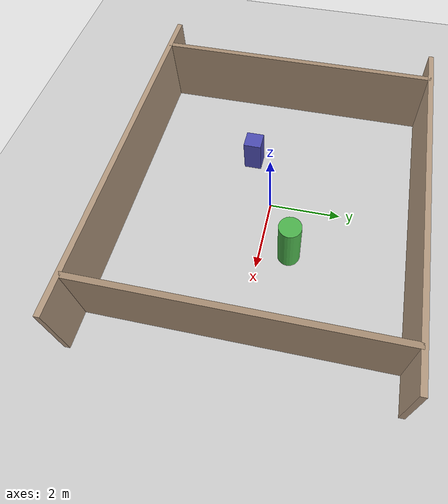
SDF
<?xml version="1.0"?>
<sdf version="1.6">
	<world name="empty">
		<physics type="ode">
			<max_step_size>0.001</max_step_size>
			<real_time_factor>1</real_time_factor>
			<real_time_update_rate>1000</real_time_update_rate>
		</physics>

		<model name="ground_plane">
			<static>true</static>
			<link name="link">
				<collision name="collision">
					<geometry><plane><normal>0 0 1</normal><size>20 20</size></plane></geometry>
				</collision>
				<visual name="visual">
					<geometry><plane><normal>0 0 1</normal><size>20 20</size></plane></geometry>
					<material><ambient>0.8 0.8 0.8 1</ambient></material>
				</visual>
			</link>
		</model>

		<light name="sun" type="directional">
			<pose>0 0 10 0 0 0</pose>
			<diffuse>0.8 0.8 0.8 1</diffuse>
		</light>

		<!-- Simple room walls for LiDAR to see -->
		<model name="wall_north">
			<static>true</static>
			<link name="link">
				<collision name="collision">
					<geometry><box><size>10 0.15 2</size></box></geometry>
				</collision>
				<visual name="visual">
					<geometry><box><size>10 0.15 2</size></box></geometry>
					<material><ambient>0.7 0.6 0.5 1</ambient></material>
				</visual>
			</link>
			<pose>0 4 1 0 0 0</pose>
		</model>

		<model name="wall_south">
			<static>true</static>
			<link name="link">
				<collision name="collision">
					<geometry><box><size>10 0.15 2</size></box></geometry>
				</collision>
				<visual name="visual">
					<geometry><box><size>10 0.15 2</size></box></geometry>
					<material><ambient>0.7 0.6 0.5 1</ambient></material>
				</visual>
			</link>
			<pose>0 -4 1 0 0 0</pose>
		</model>

		<model name="wall_east">
			<static>true</static>
			<link name="link">
				<collision name="collision">
					<geometry><box><size>0.15 8 2</size></box></geometry>
				</collision>
				<visual name="visual">
					<geometry><box><size>0.15 8 2</size></box></geometry>
					<material><ambient>0.65 0.55 0.45 1</ambient></material>
				</visual>
			</link>
			<pose>4 0 1 0 0 0</pose>
		</model>

		<model name="wall_west">
			<static>true</static>
			<link name="link">
				<collision name="collision">
					<geometry><box><size>0.15 8 2</size></box></geometry>
				</collision>
				<visual name="visual">
					<geometry><box><size>0.15 8 2</size></box></geometry>
					<material><ambient>0.65 0.55 0.45 1</ambient></material>
				</visual>
			</link>
			<pose>-4 0 1 0 0 0</pose>
		</model>

		<model name="cylinder_obs">
			<static>true</static>
			<link name="link">
				<collision name="collision">
					<geometry><cylinder><radius>0.3</radius><length>1.5</length></cylinder></geometry>
				</collision>
				<visual name="visual">
					<geometry><cylinder><radius>0.3</radius><length>1.5</length></cylinder></geometry>
					<material><ambient>0.3 0.7 0.3 1</ambient></material>
				</visual>
			</link>
			<pose>1.5 0.8 0.75 0 0 0</pose>
		</model>

		<model name="box_obs">
			<static>true</static>
			<link name="link">
				<collision name="collision">
					<geometry><box><size>0.5 0.5 1.0</size></box></geometry>
				</collision>
				<visual name="visual">
					<geometry><box><size>0.5 0.5 1.0</size></box></geometry>
					<material><ambient>0.3 0.3 0.7 1</ambient></material>
				</visual>
			</link>
			<pose>-1.5 -0.8 0.5 0 0 0</pose>
		</model>

	</world>
</sdf>
